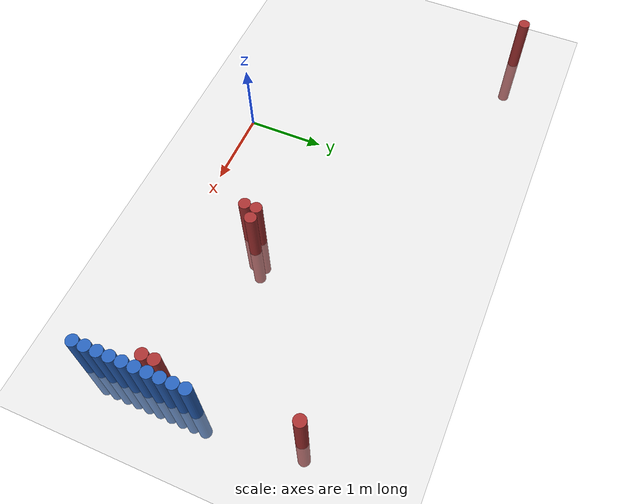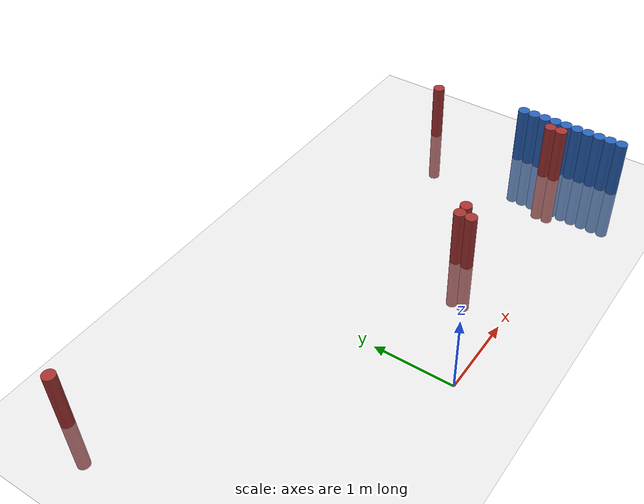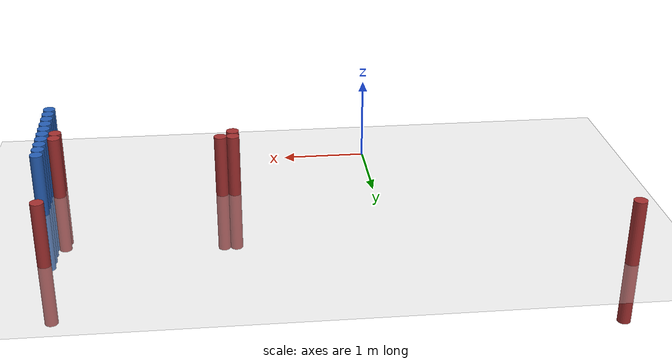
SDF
<sdf version="1.6">
 <world name="default">
  <model name="ground_plane">
   <static>1</static>
   <link name="link">
    <collision name="collision">
     <geometry><plane><normal>0 0 1</normal><size>100 100</size></plane></geometry>
     <surface><friction><ode><mu>100</mu><mu2>50</mu2></ode></friction></surface>
    </collision>
    <visual name="visual">
     <cast_shadows>0</cast_shadows>
     <geometry><plane><normal>0 0 1</normal><size>100 100</size></plane></geometry>
     <material>
      <script><uri>file://media/materials/scripts/gazebo.material</uri><name>Gazebo/Grey</name></script>
     </material>
    </visual>
   </link>
  </model>
  <model name="unit_cylinder_114">
   <static>1</static>
   <pose>3.925000 0.025000 0.000000 0.000000 0.000000 0.000000</pose>
   <link name="link">
    <inertial>
     <mass>1</mass>
     <inertia><ixx>0.145833</ixx><ixy>0</ixy><ixz>0</ixz><iyy>0.145833</iyy><iyz>0</iyz><izz>0.125</izz></inertia>
    </inertial>
    <collision name="collision">
     <geometry><cylinder><radius>0.075000</radius><length>1.5</length></cylinder></geometry>
    </collision>
    <visual name="visual">
     <geometry><cylinder><radius>0.075000</radius><length>1.5</length></cylinder></geometry>
     <material>
      <ambient>0.152000 0.379000 0.720000 1</ambient>
      <diffuse>0.152000 0.379000 0.720000 1</diffuse>
     </material>
     <material>
      <script><name>Gazebo/Grey</name><uri>file://media/materials/scripts/gazebo.material</uri></script>
     </material>
    </visual>
   </link>
  </model>
  <model name="unit_cylinder_116">
   <static>1</static>
   <pose>3.925000 0.175000 0.000000 0.000000 0.000000 0.000000</pose>
   <link name="link">
    <inertial>
     <mass>1</mass>
     <inertia><ixx>0.145833</ixx><ixy>0</ixy><ixz>0</ixz><iyy>0.145833</iyy><iyz>0</iyz><izz>0.125</izz></inertia>
    </inertial>
    <collision name="collision">
     <geometry><cylinder><radius>0.075000</radius><length>1.5</length></cylinder></geometry>
    </collision>
    <visual name="visual">
     <geometry><cylinder><radius>0.075000</radius><length>1.5</length></cylinder></geometry>
     <material>
      <ambient>0.152000 0.379000 0.720000 1</ambient>
      <diffuse>0.152000 0.379000 0.720000 1</diffuse>
     </material>
     <material>
      <script><name>Gazebo/Grey</name><uri>file://media/materials/scripts/gazebo.material</uri></script>
     </material>
    </visual>
   </link>
  </model>
  <model name="unit_cylinder_118">
   <static>1</static>
   <pose>3.925000 0.325000 0.000000 0.000000 0.000000 0.000000</pose>
   <link name="link">
    <inertial>
     <mass>1</mass>
     <inertia><ixx>0.145833</ixx><ixy>0</ixy><ixz>0</ixz><iyy>0.145833</iyy><iyz>0</iyz><izz>0.125</izz></inertia>
    </inertial>
    <collision name="collision">
     <geometry><cylinder><radius>0.075000</radius><length>1.5</length></cylinder></geometry>
    </collision>
    <visual name="visual">
     <geometry><cylinder><radius>0.075000</radius><length>1.5</length></cylinder></geometry>
     <material>
      <ambient>0.152000 0.379000 0.720000 1</ambient>
      <diffuse>0.152000 0.379000 0.720000 1</diffuse>
     </material>
     <material>
      <script><name>Gazebo/Grey</name><uri>file://media/materials/scripts/gazebo.material</uri></script>
     </material>
    </visual>
   </link>
  </model>
  <model name="unit_cylinder_120">
   <static>1</static>
   <pose>3.925000 0.475000 0.000000 0.000000 0.000000 0.000000</pose>
   <link name="link">
    <inertial>
     <mass>1</mass>
     <inertia><ixx>0.145833</ixx><ixy>0</ixy><ixz>0</ixz><iyy>0.145833</iyy><iyz>0</iyz><izz>0.125</izz></inertia>
    </inertial>
    <collision name="collision">
     <geometry><cylinder><radius>0.075000</radius><length>1.5</length></cylinder></geometry>
    </collision>
    <visual name="visual">
     <geometry><cylinder><radius>0.075000</radius><length>1.5</length></cylinder></geometry>
     <material>
      <ambient>0.152000 0.379000 0.720000 1</ambient>
      <diffuse>0.152000 0.379000 0.720000 1</diffuse>
     </material>
     <material>
      <script><name>Gazebo/Grey</name><uri>file://media/materials/scripts/gazebo.material</uri></script>
     </material>
    </visual>
   </link>
  </model>
  <model name="unit_cylinder_122">
   <static>1</static>
   <pose>3.925000 0.625000 0.000000 0.000000 0.000000 0.000000</pose>
   <link name="link">
    <inertial>
     <mass>1</mass>
     <inertia><ixx>0.145833</ixx><ixy>0</ixy><ixz>0</ixz><iyy>0.145833</iyy><iyz>0</iyz><izz>0.125</izz></inertia>
    </inertial>
    <collision name="collision">
     <geometry><cylinder><radius>0.075000</radius><length>1.5</length></cylinder></geometry>
    </collision>
    <visual name="visual">
     <geometry><cylinder><radius>0.075000</radius><length>1.5</length></cylinder></geometry>
     <material>
      <ambient>0.152000 0.379000 0.720000 1</ambient>
      <diffuse>0.152000 0.379000 0.720000 1</diffuse>
     </material>
     <material>
      <script><name>Gazebo/Grey</name><uri>file://media/materials/scripts/gazebo.material</uri></script>
     </material>
    </visual>
   </link>
  </model>
  <model name="unit_cylinder_124">
   <static>1</static>
   <pose>3.925000 0.775000 0.000000 0.000000 0.000000 0.000000</pose>
   <link name="link">
    <inertial>
     <mass>1</mass>
     <inertia><ixx>0.145833</ixx><ixy>0</ixy><ixz>0</ixz><iyy>0.145833</iyy><iyz>0</iyz><izz>0.125</izz></inertia>
    </inertial>
    <collision name="collision">
     <geometry><cylinder><radius>0.075000</radius><length>1.5</length></cylinder></geometry>
    </collision>
    <visual name="visual">
     <geometry><cylinder><radius>0.075000</radius><length>1.5</length></cylinder></geometry>
     <material>
      <ambient>0.152000 0.379000 0.720000 1</ambient>
      <diffuse>0.152000 0.379000 0.720000 1</diffuse>
     </material>
     <material>
      <script><name>Gazebo/Grey</name><uri>file://media/materials/scripts/gazebo.material</uri></script>
     </material>
    </visual>
   </link>
  </model>
  <model name="unit_cylinder_126">
   <static>1</static>
   <pose>3.925000 0.925000 0.000000 0.000000 0.000000 0.000000</pose>
   <link name="link">
    <inertial>
     <mass>1</mass>
     <inertia><ixx>0.145833</ixx><ixy>0</ixy><ixz>0</ixz><iyy>0.145833</iyy><iyz>0</iyz><izz>0.125</izz></inertia>
    </inertial>
    <collision name="collision">
     <geometry><cylinder><radius>0.075000</radius><length>1.5</length></cylinder></geometry>
    </collision>
    <visual name="visual">
     <geometry><cylinder><radius>0.075000</radius><length>1.5</length></cylinder></geometry>
     <material>
      <ambient>0.152000 0.379000 0.720000 1</ambient>
      <diffuse>0.152000 0.379000 0.720000 1</diffuse>
     </material>
     <material>
      <script><name>Gazebo/Grey</name><uri>file://media/materials/scripts/gazebo.material</uri></script>
     </material>
    </visual>
   </link>
  </model>
  <model name="unit_cylinder_128">
   <static>1</static>
   <pose>3.925000 1.075000 0.000000 0.000000 0.000000 0.000000</pose>
   <link name="link">
    <inertial>
     <mass>1</mass>
     <inertia><ixx>0.145833</ixx><ixy>0</ixy><ixz>0</ixz><iyy>0.145833</iyy><iyz>0</iyz><izz>0.125</izz></inertia>
    </inertial>
    <collision name="collision">
     <geometry><cylinder><radius>0.075000</radius><length>1.5</length></cylinder></geometry>
    </collision>
    <visual name="visual">
     <geometry><cylinder><radius>0.075000</radius><length>1.5</length></cylinder></geometry>
     <material>
      <ambient>0.152000 0.379000 0.720000 1</ambient>
      <diffuse>0.152000 0.379000 0.720000 1</diffuse>
     </material>
     <material>
      <script><name>Gazebo/Grey</name><uri>file://media/materials/scripts/gazebo.material</uri></script>
     </material>
    </visual>
   </link>
  </model>
  <model name="unit_cylinder_130">
   <static>1</static>
   <pose>3.925000 1.225000 0.000000 0.000000 0.000000 0.000000</pose>
   <link name="link">
    <inertial>
     <mass>1</mass>
     <inertia><ixx>0.145833</ixx><ixy>0</ixy><ixz>0</ixz><iyy>0.145833</iyy><iyz>0</iyz><izz>0.125</izz></inertia>
    </inertial>
    <collision name="collision">
     <geometry><cylinder><radius>0.075000</radius><length>1.5</length></cylinder></geometry>
    </collision>
    <visual name="visual">
     <geometry><cylinder><radius>0.075000</radius><length>1.5</length></cylinder></geometry>
     <material>
      <ambient>0.152000 0.379000 0.720000 1</ambient>
      <diffuse>0.152000 0.379000 0.720000 1</diffuse>
     </material>
     <material>
      <script><name>Gazebo/Grey</name><uri>file://media/materials/scripts/gazebo.material</uri></script>
     </material>
    </visual>
   </link>
  </model>
  <model name="unit_cylinder_275">
   <static>1</static>
   <pose>-2.525000 3.025000 0.000000 0.000000 0.000000 0.000000</pose>
   <link name="link">
    <inertial>
     <mass>1</mass>
     <inertia><ixx>0.145833</ixx><ixy>0</ixy><ixz>0</ixz><iyy>0.145833</iyy><iyz>0</iyz><izz>0.125</izz></inertia>
    </inertial>
    <collision name="collision">
     <geometry><cylinder><radius>0.075000</radius><length>1.5</length></cylinder></geometry>
    </collision>
    <visual name="visual">
     <geometry><cylinder><radius>0.075000</radius><length>1.5</length></cylinder></geometry>
     <material>
      <ambient>0.648000 0.192000 0.192000 1</ambient>
      <diffuse>0.648000 0.192000 0.192000 1</diffuse>
     </material>
     <material>
      <script><name>Gazebo/Grey</name><uri>file://media/materials/scripts/gazebo.material</uri></script>
     </material>
    </visual>
   </link>
  </model>
  <model name="unit_cylinder_288">
   <static>1</static>
   <pose>1.675000 0.775000 0.000000 0.000000 0.000000 0.000000</pose>
   <link name="link">
    <inertial>
     <mass>1</mass>
     <inertia><ixx>0.145833</ixx><ixy>0</ixy><ixz>0</ixz><iyy>0.145833</iyy><iyz>0</iyz><izz>0.125</izz></inertia>
    </inertial>
    <collision name="collision">
     <geometry><cylinder><radius>0.075000</radius><length>1.5</length></cylinder></geometry>
    </collision>
    <visual name="visual">
     <geometry><cylinder><radius>0.075000</radius><length>1.5</length></cylinder></geometry>
     <material>
      <ambient>0.648000 0.192000 0.192000 1</ambient>
      <diffuse>0.648000 0.192000 0.192000 1</diffuse>
     </material>
     <material>
      <script><name>Gazebo/Grey</name><uri>file://media/materials/scripts/gazebo.material</uri></script>
     </material>
    </visual>
   </link>
  </model>
  <model name="unit_cylinder_289">
   <static>1</static>
   <pose>1.675000 0.925000 0.000000 0.000000 0.000000 0.000000</pose>
   <link name="link">
    <inertial>
     <mass>1</mass>
     <inertia><ixx>0.145833</ixx><ixy>0</ixy><ixz>0</ixz><iyy>0.145833</iyy><iyz>0</iyz><izz>0.125</izz></inertia>
    </inertial>
    <collision name="collision">
     <geometry><cylinder><radius>0.075000</radius><length>1.5</length></cylinder></geometry>
    </collision>
    <visual name="visual">
     <geometry><cylinder><radius>0.075000</radius><length>1.5</length></cylinder></geometry>
     <material>
      <ambient>0.648000 0.192000 0.192000 1</ambient>
      <diffuse>0.648000 0.192000 0.192000 1</diffuse>
     </material>
     <material>
      <script><name>Gazebo/Grey</name><uri>file://media/materials/scripts/gazebo.material</uri></script>
     </material>
    </visual>
   </link>
  </model>
  <model name="unit_cylinder_290">
   <static>1</static>
   <pose>1.825000 0.925000 0.000000 0.000000 0.000000 0.000000</pose>
   <link name="link">
    <inertial>
     <mass>1</mass>
     <inertia><ixx>0.145833</ixx><ixy>0</ixy><ixz>0</ixz><iyy>0.145833</iyy><iyz>0</iyz><izz>0.125</izz></inertia>
    </inertial>
    <collision name="collision">
     <geometry><cylinder><radius>0.075000</radius><length>1.5</length></cylinder></geometry>
    </collision>
    <visual name="visual">
     <geometry><cylinder><radius>0.075000</radius><length>1.5</length></cylinder></geometry>
     <material>
      <ambient>0.648000 0.192000 0.192000 1</ambient>
      <diffuse>0.648000 0.192000 0.192000 1</diffuse>
     </material>
     <material>
      <script><name>Gazebo/Grey</name><uri>file://media/materials/scripts/gazebo.material</uri></script>
     </material>
    </visual>
   </link>
  </model>
  <model name="unit_cylinder_293">
   <static>1</static>
   <pose>3.775000 0.625000 0.000000 0.000000 0.000000 0.000000</pose>
   <link name="link">
    <inertial>
     <mass>1</mass>
     <inertia><ixx>0.145833</ixx><ixy>0</ixy><ixz>0</ixz><iyy>0.145833</iyy><iyz>0</iyz><izz>0.125</izz></inertia>
    </inertial>
    <collision name="collision">
     <geometry><cylinder><radius>0.075000</radius><length>1.5</length></cylinder></geometry>
    </collision>
    <visual name="visual">
     <geometry><cylinder><radius>0.075000</radius><length>1.5</length></cylinder></geometry>
     <material>
      <ambient>0.648000 0.192000 0.192000 1</ambient>
      <diffuse>0.648000 0.192000 0.192000 1</diffuse>
     </material>
     <material>
      <script><name>Gazebo/Grey</name><uri>file://media/materials/scripts/gazebo.material</uri></script>
     </material>
    </visual>
   </link>
  </model>
  <model name="unit_cylinder_294">
   <static>1</static>
   <pose>3.775000 0.775000 0.000000 0.000000 0.000000 0.000000</pose>
   <link name="link">
    <inertial>
     <mass>1</mass>
     <inertia><ixx>0.145833</ixx><ixy>0</ixy><ixz>0</ixz><iyy>0.145833</iyy><iyz>0</iyz><izz>0.125</izz></inertia>
    </inertial>
    <collision name="collision">
     <geometry><cylinder><radius>0.075000</radius><length>1.5</length></cylinder></geometry>
    </collision>
    <visual name="visual">
     <geometry><cylinder><radius>0.075000</radius><length>1.5</length></cylinder></geometry>
     <material>
      <ambient>0.648000 0.192000 0.192000 1</ambient>
      <diffuse>0.648000 0.192000 0.192000 1</diffuse>
     </material>
     <material>
      <script><name>Gazebo/Grey</name><uri>file://media/materials/scripts/gazebo.material</uri></script>
     </material>
    </visual>
   </link>
  </model>
  <model name="unit_cylinder_295">
   <static>1</static>
   <pose>3.775000 2.425000 0.000000 0.000000 0.000000 0.000000</pose>
   <link name="link">
    <inertial>
     <mass>1</mass>
     <inertia><ixx>0.145833</ixx><ixy>0</ixy><ixz>0</ixz><iyy>0.145833</iyy><iyz>0</iyz><izz>0.125</izz></inertia>
    </inertial>
    <collision name="collision">
     <geometry><cylinder><radius>0.075000</radius><length>1.5</length></cylinder></geometry>
    </collision>
    <visual name="visual">
     <geometry><cylinder><radius>0.075000</radius><length>1.5</length></cylinder></geometry>
     <material>
      <ambient>0.648000 0.192000 0.192000 1</ambient>
      <diffuse>0.648000 0.192000 0.192000 1</diffuse>
     </material>
     <material>
      <script><name>Gazebo/Grey</name><uri>file://media/materials/scripts/gazebo.material</uri></script>
     </material>
    </visual>
   </link>
  </model>
  <model name="unit_cylinder_309">
   <static>1</static>
   <pose>3.925000 -0.125000 0.000000 0.000000 0.000000 0.000000</pose>
   <link name="link">
    <inertial>
     <mass>1</mass>
     <inertia><ixx>0.145833</ixx><ixy>0</ixy><ixz>0</ixz><iyy>0.145833</iyy><iyz>0</iyz><izz>0.125</izz></inertia>
    </inertial>
    <collision name="collision">
     <geometry><cylinder><radius>0.075000</radius><length>1.5</length></cylinder></geometry>
    </collision>
    <visual name="visual">
     <geometry><cylinder><radius>0.075000</radius><length>1.5</length></cylinder></geometry>
     <material>
      <ambient>0.152000 0.379000 0.720000 1</ambient>
      <diffuse>0.152000 0.379000 0.720000 1</diffuse>
     </material>
     <material>
      <script><name>Gazebo/Grey</name><uri>file://media/materials/scripts/gazebo.material</uri></script>
     </material>
    </visual>
   </link>
  </model>
  <model name="unit_cylinder_310">
   <static>1</static>
   <pose>3.925000 0.025000 0.000000 0.000000 0.000000 0.000000</pose>
   <link name="link">
    <inertial>
     <mass>1</mass>
     <inertia><ixx>0.145833</ixx><ixy>0</ixy><ixz>0</ixz><iyy>0.145833</iyy><iyz>0</iyz><izz>0.125</izz></inertia>
    </inertial>
    <collision name="collision">
     <geometry><cylinder><radius>0.075000</radius><length>1.5</length></cylinder></geometry>
    </collision>
    <visual name="visual">
     <geometry><cylinder><radius>0.075000</radius><length>1.5</length></cylinder></geometry>
     <material>
      <ambient>0.152000 0.379000 0.720000 1</ambient>
      <diffuse>0.152000 0.379000 0.720000 1</diffuse>
     </material>
     <material>
      <script><name>Gazebo/Grey</name><uri>file://media/materials/scripts/gazebo.material</uri></script>
     </material>
    </visual>
   </link>
  </model>
  <model name="unit_cylinder_311">
   <static>1</static>
   <pose>3.925000 0.175000 0.000000 0.000000 0.000000 0.000000</pose>
   <link name="link">
    <inertial>
     <mass>1</mass>
     <inertia><ixx>0.145833</ixx><ixy>0</ixy><ixz>0</ixz><iyy>0.145833</iyy><iyz>0</iyz><izz>0.125</izz></inertia>
    </inertial>
    <collision name="collision">
     <geometry><cylinder><radius>0.075000</radius><length>1.5</length></cylinder></geometry>
    </collision>
    <visual name="visual">
     <geometry><cylinder><radius>0.075000</radius><length>1.5</length></cylinder></geometry>
     <material>
      <ambient>0.152000 0.379000 0.720000 1</ambient>
      <diffuse>0.152000 0.379000 0.720000 1</diffuse>
     </material>
     <material>
      <script><name>Gazebo/Grey</name><uri>file://media/materials/scripts/gazebo.material</uri></script>
     </material>
    </visual>
   </link>
  </model>
  <model name="unit_cylinder_312">
   <static>1</static>
   <pose>3.925000 0.325000 0.000000 0.000000 0.000000 0.000000</pose>
   <link name="link">
    <inertial>
     <mass>1</mass>
     <inertia><ixx>0.145833</ixx><ixy>0</ixy><ixz>0</ixz><iyy>0.145833</iyy><iyz>0</iyz><izz>0.125</izz></inertia>
    </inertial>
    <collision name="collision">
     <geometry><cylinder><radius>0.075000</radius><length>1.5</length></cylinder></geometry>
    </collision>
    <visual name="visual">
     <geometry><cylinder><radius>0.075000</radius><length>1.5</length></cylinder></geometry>
     <material>
      <ambient>0.152000 0.379000 0.720000 1</ambient>
      <diffuse>0.152000 0.379000 0.720000 1</diffuse>
     </material>
     <material>
      <script><name>Gazebo/Grey</name><uri>file://media/materials/scripts/gazebo.material</uri></script>
     </material>
    </visual>
   </link>
  </model>
  <model name="unit_cylinder_313">
   <static>1</static>
   <pose>3.925000 0.475000 0.000000 0.000000 0.000000 0.000000</pose>
   <link name="link">
    <inertial>
     <mass>1</mass>
     <inertia><ixx>0.145833</ixx><ixy>0</ixy><ixz>0</ixz><iyy>0.145833</iyy><iyz>0</iyz><izz>0.125</izz></inertia>
    </inertial>
    <collision name="collision">
     <geometry><cylinder><radius>0.075000</radius><length>1.5</length></cylinder></geometry>
    </collision>
    <visual name="visual">
     <geometry><cylinder><radius>0.075000</radius><length>1.5</length></cylinder></geometry>
     <material>
      <ambient>0.152000 0.379000 0.720000 1</ambient>
      <diffuse>0.152000 0.379000 0.720000 1</diffuse>
     </material>
     <material>
      <script><name>Gazebo/Grey</name><uri>file://media/materials/scripts/gazebo.material</uri></script>
     </material>
    </visual>
   </link>
  </model>
  <model name="unit_cylinder_314">
   <static>1</static>
   <pose>3.925000 0.625000 0.000000 0.000000 0.000000 0.000000</pose>
   <link name="link">
    <inertial>
     <mass>1</mass>
     <inertia><ixx>0.145833</ixx><ixy>0</ixy><ixz>0</ixz><iyy>0.145833</iyy><iyz>0</iyz><izz>0.125</izz></inertia>
    </inertial>
    <collision name="collision">
     <geometry><cylinder><radius>0.075000</radius><length>1.5</length></cylinder></geometry>
    </collision>
    <visual name="visual">
     <geometry><cylinder><radius>0.075000</radius><length>1.5</length></cylinder></geometry>
     <material>
      <ambient>0.152000 0.379000 0.720000 1</ambient>
      <diffuse>0.152000 0.379000 0.720000 1</diffuse>
     </material>
     <material>
      <script><name>Gazebo/Grey</name><uri>file://media/materials/scripts/gazebo.material</uri></script>
     </material>
    </visual>
   </link>
  </model>
  <model name="unit_cylinder_315">
   <static>1</static>
   <pose>3.925000 0.775000 0.000000 0.000000 0.000000 0.000000</pose>
   <link name="link">
    <inertial>
     <mass>1</mass>
     <inertia><ixx>0.145833</ixx><ixy>0</ixy><ixz>0</ixz><iyy>0.145833</iyy><iyz>0</iyz><izz>0.125</izz></inertia>
    </inertial>
    <collision name="collision">
     <geometry><cylinder><radius>0.075000</radius><length>1.5</length></cylinder></geometry>
    </collision>
    <visual name="visual">
     <geometry><cylinder><radius>0.075000</radius><length>1.5</length></cylinder></geometry>
     <material>
      <ambient>0.152000 0.379000 0.720000 1</ambient>
      <diffuse>0.152000 0.379000 0.720000 1</diffuse>
     </material>
     <material>
      <script><name>Gazebo/Grey</name><uri>file://media/materials/scripts/gazebo.material</uri></script>
     </material>
    </visual>
   </link>
  </model>
  <model name="unit_cylinder_316">
   <static>1</static>
   <pose>3.925000 0.925000 0.000000 0.000000 0.000000 0.000000</pose>
   <link name="link">
    <inertial>
     <mass>1</mass>
     <inertia><ixx>0.145833</ixx><ixy>0</ixy><ixz>0</ixz><iyy>0.145833</iyy><iyz>0</iyz><izz>0.125</izz></inertia>
    </inertial>
    <collision name="collision">
     <geometry><cylinder><radius>0.075000</radius><length>1.5</length></cylinder></geometry>
    </collision>
    <visual name="visual">
     <geometry><cylinder><radius>0.075000</radius><length>1.5</length></cylinder></geometry>
     <material>
      <ambient>0.152000 0.379000 0.720000 1</ambient>
      <diffuse>0.152000 0.379000 0.720000 1</diffuse>
     </material>
     <material>
      <script><name>Gazebo/Grey</name><uri>file://media/materials/scripts/gazebo.material</uri></script>
     </material>
    </visual>
   </link>
  </model>
  <model name="unit_cylinder_317">
   <static>1</static>
   <pose>3.925000 1.075000 0.000000 0.000000 0.000000 0.000000</pose>
   <link name="link">
    <inertial>
     <mass>1</mass>
     <inertia><ixx>0.145833</ixx><ixy>0</ixy><ixz>0</ixz><iyy>0.145833</iyy><iyz>0</iyz><izz>0.125</izz></inertia>
    </inertial>
    <collision name="collision">
     <geometry><cylinder><radius>0.075000</radius><length>1.5</length></cylinder></geometry>
    </collision>
    <visual name="visual">
     <geometry><cylinder><radius>0.075000</radius><length>1.5</length></cylinder></geometry>
     <material>
      <ambient>0.152000 0.379000 0.720000 1</ambient>
      <diffuse>0.152000 0.379000 0.720000 1</diffuse>
     </material>
     <material>
      <script><name>Gazebo/Grey</name><uri>file://media/materials/scripts/gazebo.material</uri></script>
     </material>
    </visual>
   </link>
  </model>
 </world>
</sdf>
